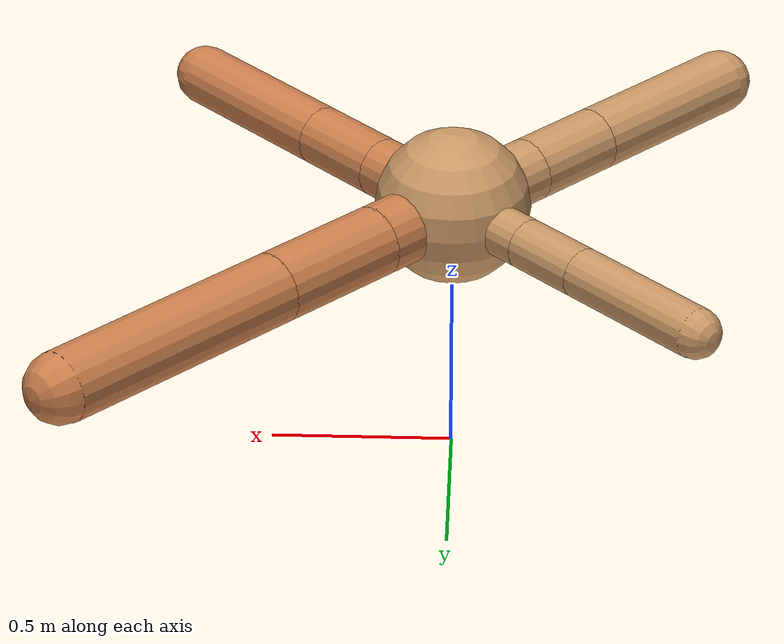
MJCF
<?xml version="1.0" ?>
<mujoco model="ant">

	<compiler angle="degree" coordinate="local" inertiafromgeom="true"/>

	<option integrator="RK4" timestep="0.01"/>

	<custom>

		<numeric data="0.0 0.0 0.55 1.0 0.0 0.0 0.0 0.0 1.0 0.0 -1.0 0.0 -1.0 0.0 1.0" name="init_qpos"/>

	</custom>

	<default>

		<joint armature="1" damping="1" limited="true"/>

		<geom conaffinity="0" condim="3" density="5.0" friction="1.5 0.1 0.1" margin="0.01" rgba="0.8 0.6 0.4 1"/>

	</default>

	<worldbody>

		<body name="torso" pos="0 0 0.75">

			<geom name="torso_geom" pos="0 0 0" size="0.21097329058815176" type="sphere"/>

			<!--joint armature="0" damping="0" limited="false" margin="0.01" name="root" pos="0 0 0" type="free"/-->

			<body name="front_left_leg" pos="0 0 0">

				<geom fromto="0 0 0 0.2 0.2 0" name="aux_1_geom" size="0.09641854851473762" type="capsule" rgba=".8 .5 .3 1"/>

				<body name="aux_1" pos="0.2 0.2 0">

					<joint axis="0 0 1" name="hip_1" pos="0.0 0.0 0.0" range="-40 40" type="hinge"/>

					<geom fromto="0 0 0 0.25022083952522184 0.25022083952522184 0" name="left_leg_geom" size="0.09641854851473762" type="capsule" rgba=".8 .5 .3 1"/>

					<body pos="0.25022083952522184 0.25022083952522184 0" name="front_left_foot">

						<joint axis="-1 1 0" name="ankle_1" pos="0.0 0.0 0.0" range="30 100" type="hinge"/>

						<geom fromto="0 0 0 0.5004416790504437 0.5004416790504437 0" name="left_ankle_geom" size="0.09641854851473762" type="capsule" rgba=".8 .5 .3 1"/>

					</body>

				</body>

			</body>

			<body name="front_right_leg" pos="0 0 0">

				<geom fromto="0 0 0 -0.2 0.2 0" name="aux_2_geom" size="0.06864938230332993" type="capsule"/>

				<body name="aux_2" pos="-0.2 0.2 0">

					<joint axis="0 0 1" name="hip_2" pos="0.0 0.0 0.0" range="-40 40" type="hinge"/>

					<geom fromto="0 0 0 -0.14499463094471052 0.14499463094471052 0" name="right_leg_geom" size="0.06864938230332993" type="capsule"/>

					<body pos="-0.14499463094471052 0.14499463094471052 0" name="front_right_foot">

						<joint axis="1 1 0" name="ankle_2" pos="0.0 0.0 0.0" range="-100 -30" type="hinge"/>

						<geom fromto="0 0 0 -0.28998926188942103 0.28998926188942103 0" name="right_ankle_geom" size="0.06864938230332993" type="capsule"/>

					</body>

				</body>

			</body>

			<body name="left_back_leg" pos="0 0 0">

				<geom fromto="0 0 0 -0.2 -0.2 0" name="aux_3_geom" size="0.08892737277203541" type="capsule"/>

				<body name="aux_3" pos="-0.2 -0.2 0">

					<joint axis="0 0 1" name="hip_3" pos="0.0 0.0 0.0" range="-40 40" type="hinge"/>

					<geom fromto="0 0 0 -0.17828051760170227 -0.17828051760170227 0" name="back_leg_geom" size="0.08892737277203541" type="capsule"/>

					<body pos="-0.17828051760170227 -0.17828051760170227 0" name="left_back_foot">

						<joint axis="-1 1 0" name="ankle_3" pos="0.0 0.0 0.0" range="-100 -30" type="hinge"/>

						<geom fromto="0 0 0 -0.35656103520340454 -0.35656103520340454 0" name="third_ankle_geom" size="0.08892737277203541" type="capsule"/>

					</body>

				</body>

			</body>

			<body name="right_back_leg" pos="0 0 0">

				<geom fromto="0 0 0 0.2 -0.2 0" name="aux_4_geom" size="0.08288236253109554" type="capsule" rgba=".8 .5 .3 1"/>

				<body name="aux_4" pos="0.2 -0.2 0">

					<joint axis="0 0 1" name="hip_4" pos="0.0 0.0 0.0" range="-40 40" type="hinge"/>

					<geom fromto="0 0 0 0.174363381995834 -0.174363381995834 0" name="rightback_leg_geom" size="0.08288236253109554" type="capsule" rgba=".8 .5 .3 1"/>

					<body pos="0.174363381995834 -0.174363381995834 0" name="right_back_foot">

						<joint axis="1 1 0" name="ankle_4" pos="0.0 0.0 0.0" range="30 100" type="hinge"/>

						<geom fromto="0 0 0 0.348726763991668 -0.348726763991668 0" name="fourth_ankle_geom" size="0.08288236253109554" type="capsule" rgba=".8 .5 .3 1"/>

					</body>

				</body>

			</body>

		</body>

	</worldbody>

	<actuator>

		<motor ctrllimited="true" ctrlrange="-1.0 1.0" joint="hip_4" gear="150"/>

		<motor ctrllimited="true" ctrlrange="-1.0 1.0" joint="ankle_4" gear="150"/>

		<motor ctrllimited="true" ctrlrange="-1.0 1.0" joint="hip_1" gear="150"/>

		<motor ctrllimited="true" ctrlrange="-1.0 1.0" joint="ankle_1" gear="150"/>

		<motor ctrllimited="true" ctrlrange="-1.0 1.0" joint="hip_2" gear="150"/>

		<motor ctrllimited="true" ctrlrange="-1.0 1.0" joint="ankle_2" gear="150"/>

		<motor ctrllimited="true" ctrlrange="-1.0 1.0" joint="hip_3" gear="150"/>

		<motor ctrllimited="true" ctrlrange="-1.0 1.0" joint="ankle_3" gear="150"/>

	</actuator>

</mujoco>
